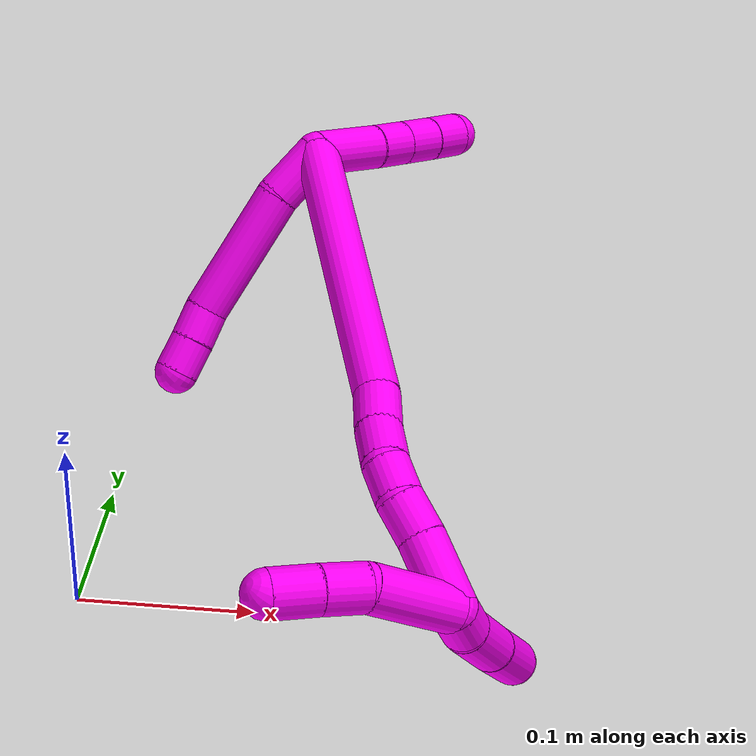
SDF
<sdf version="1.7">
 <world name="default">
  <model name="10">
   <static>0</static>
   <link name="10">
    <collision name="collision-cylinder-e_1_2_8">
     <pose>0.015453 -0.005498 -0.002909 2.05744 1.18809 1.68521</pose>
     <geometry><cylinder><radius>0.0125</radius><length>0.033315</length></cylinder></geometry>
     <surface>
      <friction><ode><mu>1.16</mu><mu2>1.16</mu2><slip1>0</slip1><slip2>0</slip2></ode></friction>
      <contact><ode><kp>1e+06</kp><kd>1</kd><max_vel>0</max_vel><min_depth>0.001</min_depth></ode></contact>
     </surface>
    </collision>
    <visual name="visual-cylinder-e_1_2_8">
     <pose>0.015453 -0.005498 -0.002909 2.05744 1.18809 1.68521</pose>
     <geometry><cylinder><radius>0.0125</radius><length>0.033315</length></cylinder></geometry>
     <material><ambient>1 0 0.964706 1</ambient></material>
    </visual>
    <collision name="collision-cylinder-e_2_8_9">
     <pose>0.066705 -0.024611 -0.004485 1.47315 1.20581 1.11615</pose>
     <geometry><cylinder><radius>0.0125</radius><length>0.076649</length></cylinder></geometry>
     <surface>
      <friction><ode><mu>1.16</mu><mu2>1.16</mu2><slip1>0</slip1><slip2>0</slip2></ode></friction>
      <contact><ode><kp>1e+06</kp><kd>1</kd><max_vel>0</max_vel><min_depth>0.001</min_depth></ode></contact>
     </surface>
    </collision>
    <visual name="visual-cylinder-e_2_8_9">
     <pose>0.066705 -0.024611 -0.004485 1.47315 1.20581 1.11615</pose>
     <geometry><cylinder><radius>0.0125</radius><length>0.076649</length></cylinder></geometry>
     <material><ambient>1 0 0.964706 1</ambient></material>
    </visual>
    <collision name="collision-cylinder-e_3_9_10">
     <pose>0.110771 -0.043852 -0.002684 1.488 0.971549 0.904729</pose>
     <geometry><cylinder><radius>0.0125</radius><length>0.020022</length></cylinder></geometry>
     <surface>
      <friction><ode><mu>1.16</mu><mu2>1.16</mu2><slip1>0</slip1><slip2>0</slip2></ode></friction>
      <contact><ode><kp>1e+06</kp><kd>1</kd><max_vel>0</max_vel><min_depth>0.001</min_depth></ode></contact>
     </surface>
    </collision>
    <visual name="visual-cylinder-e_3_9_10">
     <pose>0.110771 -0.043852 -0.002684 1.488 0.971549 0.904729</pose>
     <geometry><cylinder><radius>0.0125</radius><length>0.020022</length></cylinder></geometry>
     <material><ambient>1 0 0.964706 1</ambient></material>
    </visual>
    <collision name="collision-cylinder-e_4_10_6">
     <pose>0.127538 -0.054755 -0.001993 1.52834 1.0149 0.979235</pose>
     <geometry><cylinder><radius>0.0125</radius><length>0.020014</length></cylinder></geometry>
     <surface>
      <friction><ode><mu>1.16</mu><mu2>1.16</mu2><slip1>0</slip1><slip2>0</slip2></ode></friction>
      <contact><ode><kp>1e+06</kp><kd>1</kd><max_vel>0</max_vel><min_depth>0.001</min_depth></ode></contact>
     </surface>
    </collision>
    <visual name="visual-cylinder-e_4_10_6">
     <pose>0.127538 -0.054755 -0.001993 1.52834 1.0149 0.979235</pose>
     <geometry><cylinder><radius>0.0125</radius><length>0.020014</length></cylinder></geometry>
     <material><ambient>1 0 0.964706 1</ambient></material>
    </visual>
    <collision name="collision-cylinder-e_1_2_11">
     <pose>-0.009727 0.00543 0.016168 -0.324038 -0.518336 0.086618</pose>
     <geometry><cylinder><radius>0.0125</radius><length>0.039268</length></cylinder></geometry>
     <surface>
      <friction><ode><mu>1.16</mu><mu2>1.16</mu2><slip1>0</slip1><slip2>0</slip2></ode></friction>
      <contact><ode><kp>1e+06</kp><kd>1</kd><max_vel>0</max_vel><min_depth>0.001</min_depth></ode></contact>
     </surface>
    </collision>
    <visual name="visual-cylinder-e_1_2_11">
     <pose>-0.009727 0.00543 0.016168 -0.324038 -0.518336 0.086618</pose>
     <geometry><cylinder><radius>0.0125</radius><length>0.039268</length></cylinder></geometry>
     <material><ambient>1 0 0.964706 1</ambient></material>
    </visual>
    <collision name="collision-cylinder-e_2_11_12">
     <pose>-0.024091 0.014319 0.040505 -0.400424 -0.481542 0.09957</pose>
     <geometry><cylinder><radius>0.0125</radius><length>0.02002</length></cylinder></geometry>
     <surface>
      <friction><ode><mu>1.16</mu><mu2>1.16</mu2><slip1>0</slip1><slip2>0</slip2></ode></friction>
      <contact><ode><kp>1e+06</kp><kd>1</kd><max_vel>0</max_vel><min_depth>0.001</min_depth></ode></contact>
     </surface>
    </collision>
    <visual name="visual-cylinder-e_2_11_12">
     <pose>-0.024091 0.014319 0.040505 -0.400424 -0.481542 0.09957</pose>
     <geometry><cylinder><radius>0.0125</radius><length>0.02002</length></cylinder></geometry>
     <material><ambient>1 0 0.964706 1</ambient></material>
    </visual>
    <collision name="collision-cylinder-e_3_12_13">
     <pose>-0.033579 0.021303 0.05706 -0.398086 -0.489967 0.100774</pose>
     <geometry><cylinder><radius>0.0125</radius><length>0.020619</length></cylinder></geometry>
     <surface>
      <friction><ode><mu>1.16</mu><mu2>1.16</mu2><slip1>0</slip1><slip2>0</slip2></ode></friction>
      <contact><ode><kp>1e+06</kp><kd>1</kd><max_vel>0</max_vel><min_depth>0.001</min_depth></ode></contact>
     </surface>
    </collision>
    <visual name="visual-cylinder-e_3_12_13">
     <pose>-0.033579 0.021303 0.05706 -0.398086 -0.489967 0.100774</pose>
     <geometry><cylinder><radius>0.0125</radius><length>0.020619</length></cylinder></geometry>
     <material><ambient>1 0 0.964706 1</ambient></material>
    </visual>
    <collision name="collision-cylinder-e_4_13_5">
     <pose>-0.042967 0.028592 0.073581 -0.433151 -0.468563 0.104929</pose>
     <geometry><cylinder><radius>0.0125</radius><length>0.020093</length></cylinder></geometry>
     <surface>
      <friction><ode><mu>1.16</mu><mu2>1.16</mu2><slip1>0</slip1><slip2>0</slip2></ode></friction>
      <contact><ode><kp>1e+06</kp><kd>1</kd><max_vel>0</max_vel><min_depth>0.001</min_depth></ode></contact>
     </surface>
    </collision>
    <visual name="visual-cylinder-e_4_13_5">
     <pose>-0.042967 0.028592 0.073581 -0.433151 -0.468563 0.104929</pose>
     <geometry><cylinder><radius>0.0125</radius><length>0.020093</length></cylinder></geometry>
     <material><ambient>1 0 0.964706 1</ambient></material>
    </visual>
    <collision name="collision-cylinder-e_1_2_14">
     <pose>0.014671 -0.083256 0.009798 1.45365 0.173247 0.154134</pose>
     <geometry><cylinder><radius>0.0125</radius><length>0.17021</length></cylinder></geometry>
     <surface>
      <friction><ode><mu>1.16</mu><mu2>1.16</mu2><slip1>0</slip1><slip2>0</slip2></ode></friction>
      <contact><ode><kp>1e+06</kp><kd>1</kd><max_vel>0</max_vel><min_depth>0.001</min_depth></ode></contact>
     </surface>
    </collision>
    <visual name="visual-cylinder-e_1_2_14">
     <pose>0.014671 -0.083256 0.009798 1.45365 0.173247 0.154134</pose>
     <geometry><cylinder><radius>0.0125</radius><length>0.17021</length></cylinder></geometry>
     <material><ambient>1 0 0.964706 1</ambient></material>
    </visual>
    <collision name="collision-cylinder-e_2_14_15">
     <pose>0.031864 -0.178358 0.018561 1.65803 0.209088 0.228013</pose>
     <geometry><cylinder><radius>0.0125</radius><length>0.024311</length></cylinder></geometry>
     <surface>
      <friction><ode><mu>1.16</mu><mu2>1.16</mu2><slip1>0</slip1><slip2>0</slip2></ode></friction>
      <contact><ode><kp>1e+06</kp><kd>1</kd><max_vel>0</max_vel><min_depth>0.001</min_depth></ode></contact>
     </surface>
    </collision>
    <visual name="visual-cylinder-e_2_14_15">
     <pose>0.031864 -0.178358 0.018561 1.65803 0.209088 0.228013</pose>
     <geometry><cylinder><radius>0.0125</radius><length>0.024311</length></cylinder></geometry>
     <material><ambient>1 0 0.964706 1</ambient></material>
    </visual>
    <collision name="collision-cylinder-e_3_15_16">
     <pose>0.03537 -0.202041 0.016775 1.63406 0.08264 0.088034</pose>
     <geometry><cylinder><radius>0.0125</radius><length>0.023804</length></cylinder></geometry>
     <surface>
      <friction><ode><mu>1.16</mu><mu2>1.16</mu2><slip1>0</slip1><slip2>0</slip2></ode></friction>
      <contact><ode><kp>1e+06</kp><kd>1</kd><max_vel>0</max_vel><min_depth>0.001</min_depth></ode></contact>
     </surface>
    </collision>
    <visual name="visual-cylinder-e_3_15_16">
     <pose>0.03537 -0.202041 0.016775 1.63406 0.08264 0.088034</pose>
     <geometry><cylinder><radius>0.0125</radius><length>0.023804</length></cylinder></geometry>
     <material><ambient>1 0 0.964706 1</ambient></material>
    </visual>
    <collision name="collision-cylinder-e_4_16_17">
     <pose>0.037441 -0.223864 0.018459 1.33174 0.105509 0.082912</pose>
     <geometry><cylinder><radius>0.0125</radius><length>0.020669</length></cylinder></geometry>
     <surface>
      <friction><ode><mu>1.16</mu><mu2>1.16</mu2><slip1>0</slip1><slip2>0</slip2></ode></friction>
      <contact><ode><kp>1e+06</kp><kd>1</kd><max_vel>0</max_vel><min_depth>0.001</min_depth></ode></contact>
     </surface>
    </collision>
    <visual name="visual-cylinder-e_4_16_17">
     <pose>0.037441 -0.223864 0.018459 1.33174 0.105509 0.082912</pose>
     <geometry><cylinder><radius>0.0125</radius><length>0.020669</length></cylinder></geometry>
     <material><ambient>1 0 0.964706 1</ambient></material>
    </visual>
    <collision name="collision-cylinder-e_5_17_18">
     <pose>0.039519 -0.243713 0.02623 1.07478 0.08804 0.052484</pose>
     <geometry><cylinder><radius>0.0125</radius><length>0.022518</length></cylinder></geometry>
     <surface>
      <friction><ode><mu>1.16</mu><mu2>1.16</mu2><slip1>0</slip1><slip2>0</slip2></ode></friction>
      <contact><ode><kp>1e+06</kp><kd>1</kd><max_vel>0</max_vel><min_depth>0.001</min_depth></ode></contact>
     </surface>
    </collision>
    <visual name="visual-cylinder-e_5_17_18">
     <pose>0.039519 -0.243713 0.02623 1.07478 0.08804 0.052484</pose>
     <geometry><cylinder><radius>0.0125</radius><length>0.022518</length></cylinder></geometry>
     <material><ambient>1 0 0.964706 1</ambient></material>
    </visual>
    <collision name="collision-cylinder-e_6_18_1">
     <pose>0.043305 -0.271006 0.039231 1.15653 0.145791 0.095253</pose>
     <geometry><cylinder><radius>0.0125</radius><length>0.038488</length></cylinder></geometry>
     <surface>
      <friction><ode><mu>1.16</mu><mu2>1.16</mu2><slip1>0</slip1><slip2>0</slip2></ode></friction>
      <contact><ode><kp>1e+06</kp><kd>1</kd><max_vel>0</max_vel><min_depth>0.001</min_depth></ode></contact>
     </surface>
    </collision>
    <visual name="visual-cylinder-e_6_18_1">
     <pose>0.043305 -0.271006 0.039231 1.15653 0.145791 0.095253</pose>
     <geometry><cylinder><radius>0.0125</radius><length>0.038488</length></cylinder></geometry>
     <material><ambient>1 0 0.964706 1</ambient></material>
    </visual>
    <collision name="collision-cylinder-e_1_1_19">
     <pose>0.051772 -0.288298 0.022021 -3.13611 0.224206 -3.09288</pose>
     <geometry><cylinder><radius>0.0125</radius><length>0.051026</length></cylinder></geometry>
     <surface>
      <friction><ode><mu>1.16</mu><mu2>1.16</mu2><slip1>0</slip1><slip2>0</slip2></ode></friction>
      <contact><ode><kp>1e+06</kp><kd>1</kd><max_vel>0</max_vel><min_depth>0.001</min_depth></ode></contact>
     </surface>
    </collision>
    <visual name="visual-cylinder-e_1_1_19">
     <pose>0.051772 -0.288298 0.022021 -3.13611 0.224206 -3.09288</pose>
     <geometry><cylinder><radius>0.0125</radius><length>0.051026</length></cylinder></geometry>
     <material><ambient>1 0 0.964706 1</ambient></material>
    </visual>
    <collision name="collision-cylinder-e_2_19_20">
     <pose>0.063783 -0.288505 -0.012816 3.10722 0.566278 3.02359</pose>
     <geometry><cylinder><radius>0.0125</radius><length>0.023628</length></cylinder></geometry>
     <surface>
      <friction><ode><mu>1.16</mu><mu2>1.16</mu2><slip1>0</slip1><slip2>0</slip2></ode></friction>
      <contact><ode><kp>1e+06</kp><kd>1</kd><max_vel>0</max_vel><min_depth>0.001</min_depth></ode></contact>
     </surface>
    </collision>
    <visual name="visual-cylinder-e_2_19_20">
     <pose>0.063783 -0.288505 -0.012816 3.10722 0.566278 3.02359</pose>
     <geometry><cylinder><radius>0.0125</radius><length>0.023628</length></cylinder></geometry>
     <material><ambient>1 0 0.964706 1</ambient></material>
    </visual>
    <collision name="collision-cylinder-e_3_20_4">
     <pose>0.077383 -0.289147 -0.033162 3.11271 0.610159 3.04994</pose>
     <geometry><cylinder><radius>0.0125</radius><length>0.025347</length></cylinder></geometry>
     <surface>
      <friction><ode><mu>1.16</mu><mu2>1.16</mu2><slip1>0</slip1><slip2>0</slip2></ode></friction>
      <contact><ode><kp>1e+06</kp><kd>1</kd><max_vel>0</max_vel><min_depth>0.001</min_depth></ode></contact>
     </surface>
    </collision>
    <visual name="visual-cylinder-e_3_20_4">
     <pose>0.077383 -0.289147 -0.033162 3.11271 0.610159 3.04994</pose>
     <geometry><cylinder><radius>0.0125</radius><length>0.025347</length></cylinder></geometry>
     <material><ambient>1 0 0.964706 1</ambient></material>
    </visual>
    <collision name="collision-cylinder-e_1_1_21">
     <pose>0.050124 -0.287738 0.056032 -0.076092 0.413779 -0.015979</pose>
     <geometry><cylinder><radius>0.0125</radius><length>0.020015</length></cylinder></geometry>
     <surface>
      <friction><ode><mu>1.16</mu><mu2>1.16</mu2><slip1>0</slip1><slip2>0</slip2></ode></friction>
      <contact><ode><kp>1e+06</kp><kd>1</kd><max_vel>0</max_vel><min_depth>0.001</min_depth></ode></contact>
     </surface>
    </collision>
    <visual name="visual-cylinder-e_1_1_21">
     <pose>0.050124 -0.287738 0.056032 -0.076092 0.413779 -0.015979</pose>
     <geometry><cylinder><radius>0.0125</radius><length>0.020015</length></cylinder></geometry>
     <material><ambient>1 0 0.964706 1</ambient></material>
    </visual>
    <collision name="collision-cylinder-e_2_21_22">
     <pose>0.058832 -0.282368 0.082423 -0.264506 0.256293 -0.034279</pose>
     <geometry><cylinder><radius>0.0125</radius><length>0.03696</length></cylinder></geometry>
     <surface>
      <friction><ode><mu>1.16</mu><mu2>1.16</mu2><slip1>0</slip1><slip2>0</slip2></ode></friction>
      <contact><ode><kp>1e+06</kp><kd>1</kd><max_vel>0</max_vel><min_depth>0.001</min_depth></ode></contact>
     </surface>
    </collision>
    <visual name="visual-cylinder-e_2_21_22">
     <pose>0.058832 -0.282368 0.082423 -0.264506 0.256293 -0.034279</pose>
     <geometry><cylinder><radius>0.0125</radius><length>0.03696</length></cylinder></geometry>
     <material><ambient>1 0 0.964706 1</ambient></material>
    </visual>
    <collision name="collision-cylinder-e_3_22_3">
     <pose>0.069455 -0.270087 0.118904 -0.376799 0.279671 -0.05366</pose>
     <geometry><cylinder><radius>0.0125</radius><length>0.043025</length></cylinder></geometry>
     <surface>
      <friction><ode><mu>1.16</mu><mu2>1.16</mu2><slip1>0</slip1><slip2>0</slip2></ode></friction>
      <contact><ode><kp>1e+06</kp><kd>1</kd><max_vel>0</max_vel><min_depth>0.001</min_depth></ode></contact>
     </surface>
    </collision>
    <visual name="visual-cylinder-e_3_22_3">
     <pose>0.069455 -0.270087 0.118904 -0.376799 0.279671 -0.05366</pose>
     <geometry><cylinder><radius>0.0125</radius><length>0.043025</length></cylinder></geometry>
     <material><ambient>1 0 0.964706 1</ambient></material>
    </visual>
    <collision name="collision-sphere-3">
     <pose>0.075393 -0.262479 0.13813 0 -0 0</pose>
     <geometry><sphere><radius>0.0125</radius></sphere></geometry>
     <surface>
      <friction><ode><mu>1.16</mu><mu2>1.16</mu2><slip1>0</slip1><slip2>0</slip2></ode></friction>
      <contact><ode><kp>1e+06</kp><kd>1</kd><max_vel>0</max_vel><min_depth>0.001</min_depth></ode></contact>
     </surface>
    </collision>
    <visual name="visual-sphere-3">
     <pose>0.075393 -0.262479 0.13813 0 -0 0</pose>
     <geometry><sphere><radius>0.0125</radius></sphere></geometry>
     <material><ambient>1 0 0.964706 1</ambient></material>
    </visual>
    <collision name="collision-sphere-22">
     <pose>0.063517 -0.277695 0.099677 0 -0 0</pose>
     <geometry><sphere><radius>0.0125</radius></sphere></geometry>
     <surface>
      <friction><ode><mu>1.16</mu><mu2>1.16</mu2><slip1>0</slip1><slip2>0</slip2></ode></friction>
      <contact><ode><kp>1e+06</kp><kd>1</kd><max_vel>0</max_vel><min_depth>0.001</min_depth></ode></contact>
     </surface>
    </collision>
    <visual name="visual-sphere-22">
     <pose>0.063517 -0.277695 0.099677 0 -0 0</pose>
     <geometry><sphere><radius>0.0125</radius></sphere></geometry>
     <material><ambient>1 0 0.964706 1</ambient></material>
    </visual>
    <collision name="collision-sphere-21">
     <pose>0.054148 -0.287042 0.065168 0 -0 0</pose>
     <geometry><sphere><radius>0.0125</radius></sphere></geometry>
     <surface>
      <friction><ode><mu>1.16</mu><mu2>1.16</mu2><slip1>0</slip1><slip2>0</slip2></ode></friction>
      <contact><ode><kp>1e+06</kp><kd>1</kd><max_vel>0</max_vel><min_depth>0.001</min_depth></ode></contact>
     </surface>
    </collision>
    <visual name="visual-sphere-21">
     <pose>0.054148 -0.287042 0.065168 0 -0 0</pose>
     <geometry><sphere><radius>0.0125</radius></sphere></geometry>
     <material><ambient>1 0 0.964706 1</ambient></material>
    </visual>
    <collision name="collision-sphere-4">
     <pose>0.084645 -0.289447 -0.043545 0 -0 0</pose>
     <geometry><sphere><radius>0.0125</radius></sphere></geometry>
     <surface>
      <friction><ode><mu>1.16</mu><mu2>1.16</mu2><slip1>0</slip1><slip2>0</slip2></ode></friction>
      <contact><ode><kp>1e+06</kp><kd>1</kd><max_vel>0</max_vel><min_depth>0.001</min_depth></ode></contact>
     </surface>
    </collision>
    <visual name="visual-sphere-4">
     <pose>0.084645 -0.289447 -0.043545 0 -0 0</pose>
     <geometry><sphere><radius>0.0125</radius></sphere></geometry>
     <material><ambient>1 0 0.964706 1</ambient></material>
    </visual>
    <collision name="collision-sphere-20">
     <pose>0.070121 -0.288847 -0.02278 0 -0 0</pose>
     <geometry><sphere><radius>0.0125</radius></sphere></geometry>
     <surface>
      <friction><ode><mu>1.16</mu><mu2>1.16</mu2><slip1>0</slip1><slip2>0</slip2></ode></friction>
      <contact><ode><kp>1e+06</kp><kd>1</kd><max_vel>0</max_vel><min_depth>0.001</min_depth></ode></contact>
     </surface>
    </collision>
    <visual name="visual-sphere-20">
     <pose>0.070121 -0.288847 -0.02278 0 -0 0</pose>
     <geometry><sphere><radius>0.0125</radius></sphere></geometry>
     <material><ambient>1 0 0.964706 1</ambient></material>
    </visual>
    <collision name="collision-sphere-11">
     <pose>-0.019455 0.010861 0.032335 0 -0 0</pose>
     <geometry><sphere><radius>0.0125</radius></sphere></geometry>
     <surface>
      <friction><ode><mu>1.16</mu><mu2>1.16</mu2><slip1>0</slip1><slip2>0</slip2></ode></friction>
      <contact><ode><kp>1e+06</kp><kd>1</kd><max_vel>0</max_vel><min_depth>0.001</min_depth></ode></contact>
     </surface>
    </collision>
    <visual name="visual-sphere-11">
     <pose>-0.019455 0.010861 0.032335 0 -0 0</pose>
     <geometry><sphere><radius>0.0125</radius></sphere></geometry>
     <material><ambient>1 0 0.964706 1</ambient></material>
    </visual>
    <collision name="collision-sphere-6">
     <pose>0.136039 -0.060032 -0.001769 0 -0 0</pose>
     <geometry><sphere><radius>0.0125</radius></sphere></geometry>
     <surface>
      <friction><ode><mu>1.16</mu><mu2>1.16</mu2><slip1>0</slip1><slip2>0</slip2></ode></friction>
      <contact><ode><kp>1e+06</kp><kd>1</kd><max_vel>0</max_vel><min_depth>0.001</min_depth></ode></contact>
     </surface>
    </collision>
    <visual name="visual-sphere-6">
     <pose>0.136039 -0.060032 -0.001769 0 -0 0</pose>
     <geometry><sphere><radius>0.0125</radius></sphere></geometry>
     <material><ambient>1 0 0.964706 1</ambient></material>
    </visual>
    <collision name="collision-sphere-10">
     <pose>0.119038 -0.049479 -0.002217 0 -0 0</pose>
     <geometry><sphere><radius>0.0125</radius></sphere></geometry>
     <surface>
      <friction><ode><mu>1.16</mu><mu2>1.16</mu2><slip1>0</slip1><slip2>0</slip2></ode></friction>
      <contact><ode><kp>1e+06</kp><kd>1</kd><max_vel>0</max_vel><min_depth>0.001</min_depth></ode></contact>
     </surface>
    </collision>
    <visual name="visual-sphere-10">
     <pose>0.119038 -0.049479 -0.002217 0 -0 0</pose>
     <geometry><sphere><radius>0.0125</radius></sphere></geometry>
     <material><ambient>1 0 0.964706 1</ambient></material>
    </visual>
    <collision name="collision-sphere-9">
     <pose>0.102505 -0.038225 -0.003151 0 -0 0</pose>
     <geometry><sphere><radius>0.0125</radius></sphere></geometry>
     <surface>
      <friction><ode><mu>1.16</mu><mu2>1.16</mu2><slip1>0</slip1><slip2>0</slip2></ode></friction>
      <contact><ode><kp>1e+06</kp><kd>1</kd><max_vel>0</max_vel><min_depth>0.001</min_depth></ode></contact>
     </surface>
    </collision>
    <visual name="visual-sphere-9">
     <pose>0.102505 -0.038225 -0.003151 0 -0 0</pose>
     <geometry><sphere><radius>0.0125</radius></sphere></geometry>
     <material><ambient>1 0 0.964706 1</ambient></material>
    </visual>
    <collision name="collision-sphere-2">
     <geometry><sphere><radius>0.0125</radius></sphere></geometry>
     <surface>
      <friction><ode><mu>1.16</mu><mu2>1.16</mu2><slip1>0</slip1><slip2>0</slip2></ode></friction>
      <contact><ode><kp>1e+06</kp><kd>1</kd><max_vel>0</max_vel><min_depth>0.001</min_depth></ode></contact>
     </surface>
    </collision>
    <visual name="visual-sphere-2">
     <geometry><sphere><radius>0.0125</radius></sphere></geometry>
     <material><ambient>1 0 0.964706 1</ambient></material>
    </visual>
    <collision name="collision-sphere-19">
     <pose>0.057445 -0.288162 -0.002852 0 -0 0</pose>
     <geometry><sphere><radius>0.0125</radius></sphere></geometry>
     <surface>
      <friction><ode><mu>1.16</mu><mu2>1.16</mu2><slip1>0</slip1><slip2>0</slip2></ode></friction>
      <contact><ode><kp>1e+06</kp><kd>1</kd><max_vel>0</max_vel><min_depth>0.001</min_depth></ode></contact>
     </surface>
    </collision>
    <visual name="visual-sphere-19">
     <pose>0.057445 -0.288162 -0.002852 0 -0 0</pose>
     <geometry><sphere><radius>0.0125</radius></sphere></geometry>
     <material><ambient>1 0 0.964706 1</ambient></material>
    </visual>
    <collision name="collision-sphere-8">
     <pose>0.030905 -0.010997 -0.005818 0 -0 0</pose>
     <geometry><sphere><radius>0.0125</radius></sphere></geometry>
     <surface>
      <friction><ode><mu>1.16</mu><mu2>1.16</mu2><slip1>0</slip1><slip2>0</slip2></ode></friction>
      <contact><ode><kp>1e+06</kp><kd>1</kd><max_vel>0</max_vel><min_depth>0.001</min_depth></ode></contact>
     </surface>
    </collision>
    <visual name="visual-sphere-8">
     <pose>0.030905 -0.010997 -0.005818 0 -0 0</pose>
     <geometry><sphere><radius>0.0125</radius></sphere></geometry>
     <material><ambient>1 0 0.964706 1</ambient></material>
    </visual>
    <collision name="collision-sphere-12">
     <pose>-0.028727 0.017777 0.048675 0 -0 0</pose>
     <geometry><sphere><radius>0.0125</radius></sphere></geometry>
     <surface>
      <friction><ode><mu>1.16</mu><mu2>1.16</mu2><slip1>0</slip1><slip2>0</slip2></ode></friction>
      <contact><ode><kp>1e+06</kp><kd>1</kd><max_vel>0</max_vel><min_depth>0.001</min_depth></ode></contact>
     </surface>
    </collision>
    <visual name="visual-sphere-12">
     <pose>-0.028727 0.017777 0.048675 0 -0 0</pose>
     <geometry><sphere><radius>0.0125</radius></sphere></geometry>
     <material><ambient>1 0 0.964706 1</ambient></material>
    </visual>
    <collision name="collision-sphere-13">
     <pose>-0.03843 0.02483 0.065445 0 -0 0</pose>
     <geometry><sphere><radius>0.0125</radius></sphere></geometry>
     <surface>
      <friction><ode><mu>1.16</mu><mu2>1.16</mu2><slip1>0</slip1><slip2>0</slip2></ode></friction>
      <contact><ode><kp>1e+06</kp><kd>1</kd><max_vel>0</max_vel><min_depth>0.001</min_depth></ode></contact>
     </surface>
    </collision>
    <visual name="visual-sphere-13">
     <pose>-0.03843 0.02483 0.065445 0 -0 0</pose>
     <geometry><sphere><radius>0.0125</radius></sphere></geometry>
     <material><ambient>1 0 0.964706 1</ambient></material>
    </visual>
    <collision name="collision-sphere-5">
     <pose>-0.047504 0.032354 0.081717 0 -0 0</pose>
     <geometry><sphere><radius>0.0125</radius></sphere></geometry>
     <surface>
      <friction><ode><mu>1.16</mu><mu2>1.16</mu2><slip1>0</slip1><slip2>0</slip2></ode></friction>
      <contact><ode><kp>1e+06</kp><kd>1</kd><max_vel>0</max_vel><min_depth>0.001</min_depth></ode></contact>
     </surface>
    </collision>
    <visual name="visual-sphere-5">
     <pose>-0.047504 0.032354 0.081717 0 -0 0</pose>
     <geometry><sphere><radius>0.0125</radius></sphere></geometry>
     <material><ambient>1 0 0.964706 1</ambient></material>
    </visual>
    <collision name="collision-sphere-14">
     <pose>0.029341 -0.166513 0.019597 0 -0 0</pose>
     <geometry><sphere><radius>0.0125</radius></sphere></geometry>
     <surface>
      <friction><ode><mu>1.16</mu><mu2>1.16</mu2><slip1>0</slip1><slip2>0</slip2></ode></friction>
      <contact><ode><kp>1e+06</kp><kd>1</kd><max_vel>0</max_vel><min_depth>0.001</min_depth></ode></contact>
     </surface>
    </collision>
    <visual name="visual-sphere-14">
     <pose>0.029341 -0.166513 0.019597 0 -0 0</pose>
     <geometry><sphere><radius>0.0125</radius></sphere></geometry>
     <material><ambient>1 0 0.964706 1</ambient></material>
    </visual>
    <collision name="collision-sphere-15">
     <pose>0.034387 -0.190204 0.017525 0 -0 0</pose>
     <geometry><sphere><radius>0.0125</radius></sphere></geometry>
     <surface>
      <friction><ode><mu>1.16</mu><mu2>1.16</mu2><slip1>0</slip1><slip2>0</slip2></ode></friction>
      <contact><ode><kp>1e+06</kp><kd>1</kd><max_vel>0</max_vel><min_depth>0.001</min_depth></ode></contact>
     </surface>
    </collision>
    <visual name="visual-sphere-15">
     <pose>0.034387 -0.190204 0.017525 0 -0 0</pose>
     <geometry><sphere><radius>0.0125</radius></sphere></geometry>
     <material><ambient>1 0 0.964706 1</ambient></material>
    </visual>
    <collision name="collision-sphere-16">
     <pose>0.036352 -0.213879 0.016025 0 -0 0</pose>
     <geometry><sphere><radius>0.0125</radius></sphere></geometry>
     <surface>
      <friction><ode><mu>1.16</mu><mu2>1.16</mu2><slip1>0</slip1><slip2>0</slip2></ode></friction>
      <contact><ode><kp>1e+06</kp><kd>1</kd><max_vel>0</max_vel><min_depth>0.001</min_depth></ode></contact>
     </surface>
    </collision>
    <visual name="visual-sphere-16">
     <pose>0.036352 -0.213879 0.016025 0 -0 0</pose>
     <geometry><sphere><radius>0.0125</radius></sphere></geometry>
     <material><ambient>1 0 0.964706 1</ambient></material>
    </visual>
    <collision name="collision-sphere-17">
     <pose>0.038529 -0.233849 0.020892 0 -0 0</pose>
     <geometry><sphere><radius>0.0125</radius></sphere></geometry>
     <surface>
      <friction><ode><mu>1.16</mu><mu2>1.16</mu2><slip1>0</slip1><slip2>0</slip2></ode></friction>
      <contact><ode><kp>1e+06</kp><kd>1</kd><max_vel>0</max_vel><min_depth>0.001</min_depth></ode></contact>
     </surface>
    </collision>
    <visual name="visual-sphere-17">
     <pose>0.038529 -0.233849 0.020892 0 -0 0</pose>
     <geometry><sphere><radius>0.0125</radius></sphere></geometry>
     <material><ambient>1 0 0.964706 1</ambient></material>
    </visual>
    <collision name="collision-sphere-18">
     <pose>0.040509 -0.253577 0.031568 0 -0 0</pose>
     <geometry><sphere><radius>0.0125</radius></sphere></geometry>
     <surface>
      <friction><ode><mu>1.16</mu><mu2>1.16</mu2><slip1>0</slip1><slip2>0</slip2></ode></friction>
      <contact><ode><kp>1e+06</kp><kd>1</kd><max_vel>0</max_vel><min_depth>0.001</min_depth></ode></contact>
     </surface>
    </collision>
    <visual name="visual-sphere-18">
     <pose>0.040509 -0.253577 0.031568 0 -0 0</pose>
     <geometry><sphere><radius>0.0125</radius></sphere></geometry>
     <material><ambient>1 0 0.964706 1</ambient></material>
    </visual>
    <collision name="collision-sphere-1">
     <pose>0.0461 -0.288435 0.046895 0 -0 0</pose>
     <geometry><sphere><radius>0.0125</radius></sphere></geometry>
     <surface>
      <friction><ode><mu>1.16</mu><mu2>1.16</mu2><slip1>0</slip1><slip2>0</slip2></ode></friction>
      <contact><ode><kp>1e+06</kp><kd>1</kd><max_vel>0</max_vel><min_depth>0.001</min_depth></ode></contact>
     </surface>
    </collision>
    <visual name="visual-sphere-1">
     <pose>0.0461 -0.288435 0.046895 0 -0 0</pose>
     <geometry><sphere><radius>0.0125</radius></sphere></geometry>
     <material><ambient>1 0 0.964706 1</ambient></material>
    </visual>
    <inertial>
     <pose>0.036931 -0.137419 0.023774 0 -0 0</pose>
     <mass>0.75</mass>
     <inertia>
      <ixx>0.000532</ixx>
      <ixy>0</ixy>
      <ixz>0</ixz>
      <iyy>0.000205</iyy>
      <iyz>0</iyz>
      <izz>0.000318</izz>
     </inertia>
    </inertial>
   </link>
   <pose>0.116627 0.165596 0.202832 2.88343 0.820524 -2.99704</pose>
  </model>
 </world>
</sdf>
